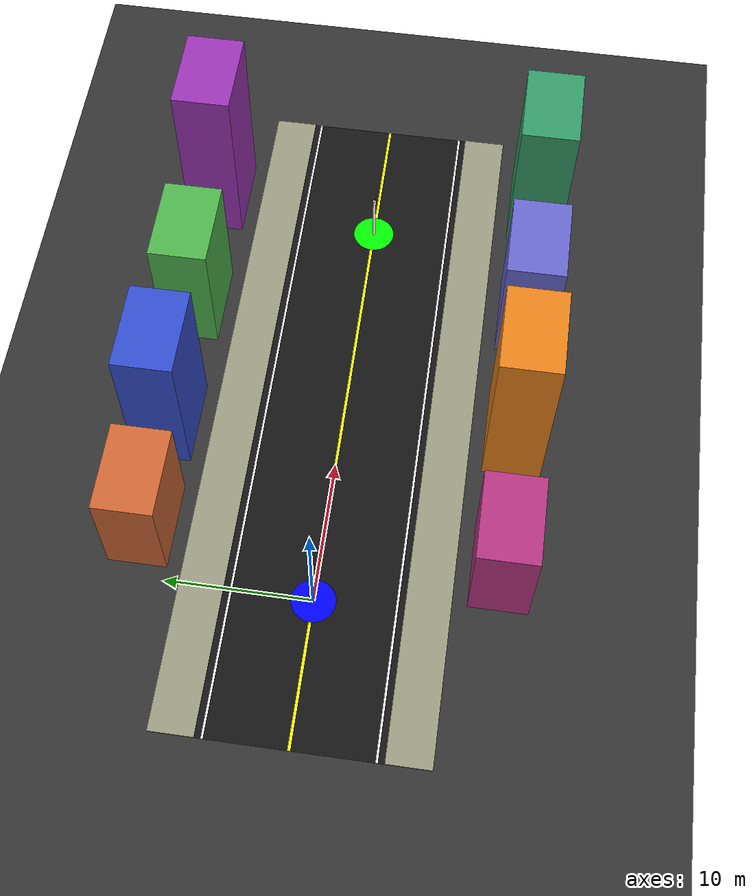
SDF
<sdf version="1.6">
 <world name="city_world">
  <physics name="default_physics" type="ode">
   <max_step_size>0.001</max_step_size>
   <real_time_factor>1.0</real_time_factor>
  </physics>
  <plugin filename="gz-sim-physics-system" name="gz::sim::systems::Physics"/>
  <plugin filename="gz-sim-scene-broadcaster-system" name="gz::sim::systems::SceneBroadcaster"/>
  <plugin filename="gz-sim-user-commands-system" name="gz::sim::systems::UserCommands"/>
  <light name="sun" type="directional">
   <pose>0 0 10 0 0 0</pose>
   <diffuse>1 1 1 1</diffuse>
   <specular>0.5 0.5 0.5 1</specular>
   <direction>-0.5 0.1 -0.9</direction>
  </light>
  <model name="ground_plane">
   <static>true</static>
   <link name="link">
    <collision name="col">
     <geometry><plane><normal>0 0 1</normal><size>200 200</size></plane></geometry>
    </collision>
    <visual name="vis">
     <geometry><plane><normal>0 0 1</normal><size>200 200</size></plane></geometry>
     <material><ambient>0.2 0.2 0.2 1</ambient><diffuse>0.2 0.2 0.2 1</diffuse></material>
    </visual>
   </link>
  </model>
  <model name="road">
   <static>true</static>
   <pose>15.0 0.0 0.001 0 0 0</pose>
   <link name="link">
    <collision name="col"><geometry><box><size>50.0 12.0 0.001</size></box></geometry></collision>
    <visual name="vis">
     <geometry><box><size>50.0 12.0 0.001</size></box></geometry>
     <material><ambient>0.08 0.08 0.08 1</ambient><diffuse>0.08 0.08 0.08 1</diffuse></material>
    </visual>
   </link>
  </model>
  <model name="center_line">
   <static>true</static>
   <pose>15.0 0.0 0.002 0 0 0</pose>
   <link name="link">
    <visual name="vis">
     <geometry><box><size>50.0 0.2 0.001</size></box></geometry>
     <material><ambient>1 1 0 1</ambient><diffuse>1 1 0 1</diffuse></material>
    </visual>
   </link>
  </model>
  <model name="left_line">
   <static>true</static>
   <pose>15.0 5.5 0.002 0 0 0</pose>
   <link name="link">
    <visual name="vis">
     <geometry><box><size>50.0 0.15 0.001</size></box></geometry>
     <material><ambient>1 1 1 1</ambient><diffuse>1 1 1 1</diffuse></material>
    </visual>
   </link>
  </model>
  <model name="right_line">
   <static>true</static>
   <pose>15.0 -5.5 0.002 0 0 0</pose>
   <link name="link">
    <visual name="vis">
     <geometry><box><size>50.0 0.15 0.001</size></box></geometry>
     <material><ambient>1 1 1 1</ambient><diffuse>1 1 1 1</diffuse></material>
    </visual>
   </link>
  </model>
  <model name="sidewalk_left">
   <static>true</static>
   <pose>15.0 7.5 0.05 0 0 0</pose>
   <link name="link">
    <collision name="col"><geometry><box><size>50.0 3.0 0.1</size></box></geometry></collision>
    <visual name="vis">
     <geometry><box><size>50.0 3.0 0.1</size></box></geometry>
     <material><ambient>0.6 0.6 0.5 1</ambient><diffuse>0.6 0.6 0.5 1</diffuse></material>
    </visual>
   </link>
  </model>
  <model name="sidewalk_right">
   <static>true</static>
   <pose>15.0 -7.5 0.05 0 0 0</pose>
   <link name="link">
    <collision name="col"><geometry><box><size>50.0 3.0 0.1</size></box></geometry></collision>
    <visual name="vis">
     <geometry><box><size>50.0 3.0 0.1</size></box></geometry>
     <material><ambient>0.6 0.6 0.5 1</ambient><diffuse>0.6 0.6 0.5 1</diffuse></material>
    </visual>
   </link>
  </model>
  <model name="building_1">
   <static>true</static>
   <pose>4.0 12.0 4.0 0 0 0</pose>
   <link name="link">
    <collision name="col"><geometry><box><size>6.0 4.0 8.0</size></box></geometry></collision>
    <visual name="vis">
     <geometry><box><size>6.0 4.0 8.0</size></box></geometry>
     <material><ambient>0.8 0.4 0.2 1</ambient><diffuse>0.8 0.4 0.2 1</diffuse></material>
    </visual>
   </link>
  </model>
  <model name="building_2">
   <static>true</static>
   <pose>12.0 12.0 6.0 0 0 0</pose>
   <link name="link">
    <collision name="col"><geometry><box><size>6.0 4.0 12.0</size></box></geometry></collision>
    <visual name="vis">
     <geometry><box><size>6.0 4.0 12.0</size></box></geometry>
     <material><ambient>0.2 0.3 0.8 1</ambient><diffuse>0.2 0.3 0.8 1</diffuse></material>
    </visual>
   </link>
  </model>
  <model name="building_3">
   <static>true</static>
   <pose>22.0 12.0 5.0 0 0 0</pose>
   <link name="link">
    <collision name="col"><geometry><box><size>6.0 4.0 10.0</size></box></geometry></collision>
    <visual name="vis">
     <geometry><box><size>6.0 4.0 10.0</size></box></geometry>
     <material><ambient>0.3 0.7 0.3 1</ambient><diffuse>0.3 0.7 0.3 1</diffuse></material>
    </visual>
   </link>
  </model>
  <model name="building_4">
   <static>true</static>
   <pose>32.0 12.0 7.0 0 0 0</pose>
   <link name="link">
    <collision name="col"><geometry><box><size>6.0 4.0 14.0</size></box></geometry></collision>
    <visual name="vis">
     <geometry><box><size>6.0 4.0 14.0</size></box></geometry>
     <material><ambient>0.6 0.2 0.7 1</ambient><diffuse>0.6 0.2 0.7 1</diffuse></material>
    </visual>
   </link>
  </model>
  <model name="building_5">
   <static>true</static>
   <pose>4.0 -12.0 4.0 0 0 0</pose>
   <link name="link">
    <collision name="col"><geometry><box><size>6.0 4.0 8.0</size></box></geometry></collision>
    <visual name="vis">
     <geometry><box><size>6.0 4.0 8.0</size></box></geometry>
     <material><ambient>0.7 0.2 0.5 1</ambient><diffuse>0.7 0.2 0.5 1</diffuse></material>
    </visual>
   </link>
  </model>
  <model name="building_6">
   <static>true</static>
   <pose>14.0 -12.0 7.0 0 0 0</pose>
   <link name="link">
    <collision name="col"><geometry><box><size>6.0 4.0 14.0</size></box></geometry></collision>
    <visual name="vis">
     <geometry><box><size>6.0 4.0 14.0</size></box></geometry>
     <material><ambient>0.9 0.5 0.1 1</ambient><diffuse>0.9 0.5 0.1 1</diffuse></material>
    </visual>
   </link>
  </model>
  <model name="building_7">
   <static>true</static>
   <pose>24.0 -12.0 5.0 0 0 0</pose>
   <link name="link">
    <collision name="col"><geometry><box><size>6.0 4.0 10.0</size></box></geometry></collision>
    <visual name="vis">
     <geometry><box><size>6.0 4.0 10.0</size></box></geometry>
     <material><ambient>0.4 0.4 0.8 1</ambient><diffuse>0.4 0.4 0.8 1</diffuse></material>
    </visual>
   </link>
  </model>
  <model name="building_8">
   <static>true</static>
   <pose>34.0 -12.0 6.0 0 0 0</pose>
   <link name="link">
    <collision name="col"><geometry><box><size>6.0 4.0 12.0</size></box></geometry></collision>
    <visual name="vis">
     <geometry><box><size>6.0 4.0 12.0</size></box></geometry>
     <material><ambient>0.2 0.6 0.4 1</ambient><diffuse>0.2 0.6 0.4 1</diffuse></material>
    </visual>
   </link>
  </model>
  <model name="goal_pole">
   <static>true</static>
   <pose>30.0 0.0 2.0 0 0 0</pose>
   <link name="link">
    <collision name="col">
     <geometry><cylinder><radius>0.1</radius><length>4.0</length></cylinder></geometry>
    </collision>
    <visual name="vis">
     <geometry><cylinder><radius>0.1</radius><length>4.0</length></cylinder></geometry>
     <material><ambient>1 1 1 1</ambient><diffuse>1 1 1 1</diffuse></material>
    </visual>
   </link>
  </model>
  <model name="goal_flag">
   <static>true</static>
   <pose>30.3 0.0 3.8 0 0 0</pose>
   <link name="link">
    <visual name="vis">
     <geometry><box><size>0.8 0.01 0.4</size></box></geometry>
     <material><ambient>1 0 0 1</ambient><diffuse>1 0 0 1</diffuse></material>
    </visual>
   </link>
  </model>
  <model name="goal_marker">
   <static>true</static>
   <pose>30.0 0.0 0.003 0 0 0</pose>
   <link name="link">
    <visual name="vis">
     <geometry><cylinder><radius>1.5</radius><length>0.001</length></cylinder></geometry>
     <material><ambient>0 1 0 1</ambient><diffuse>0 1 0 1</diffuse></material>
    </visual>
   </link>
  </model>
  <model name="start_marker">
   <static>true</static>
   <pose>0.0 0.0 0.003 0 0 0</pose>
   <link name="link">
    <visual name="vis">
     <geometry><cylinder><radius>1.5</radius><length>0.001</length></cylinder></geometry>
     <material><ambient>0 0 1 1</ambient><diffuse>0 0 1 1</diffuse></material>
    </visual>
   </link>
  </model>
 </world>
</sdf>
